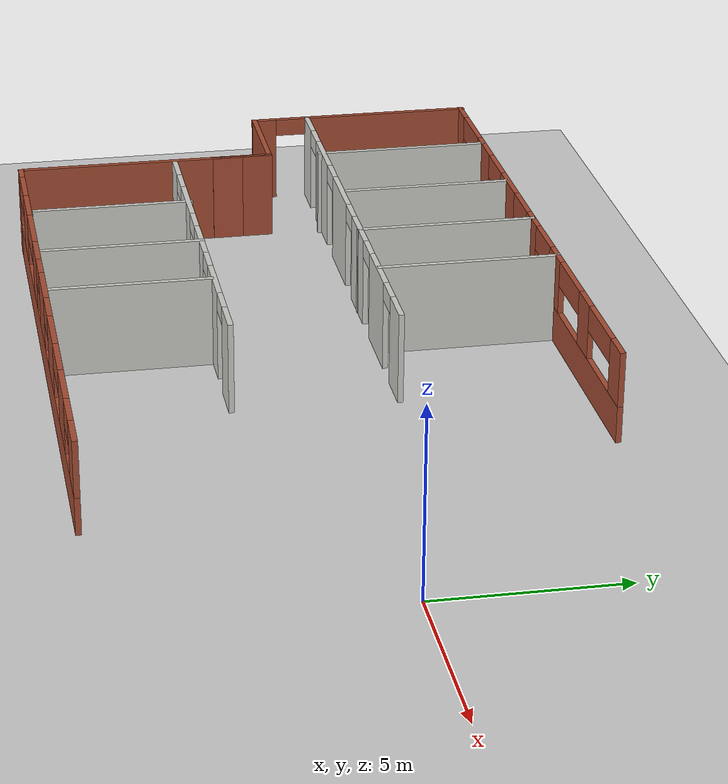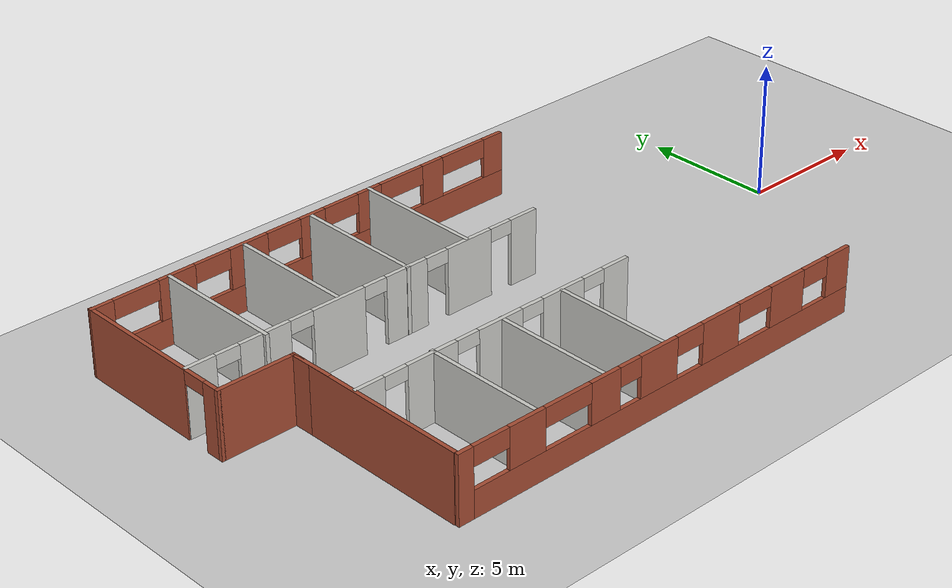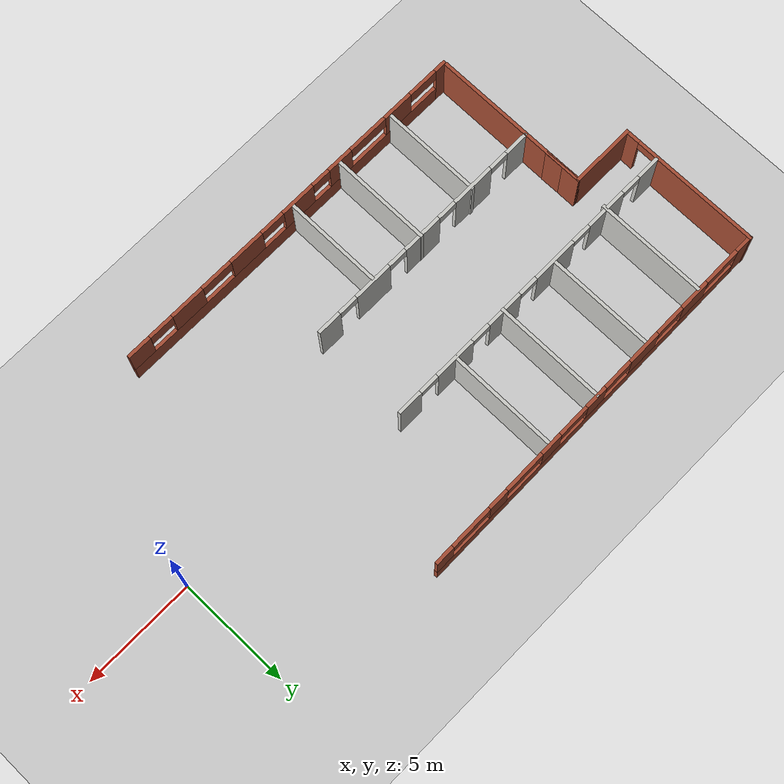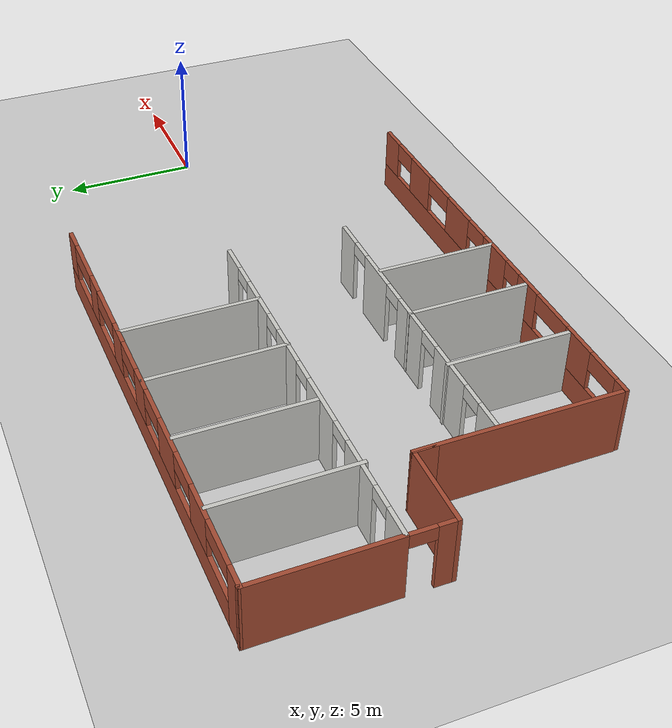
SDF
<sdf version="1.6">
 <world name="default">
  <model name="ground_plane">
   <static>1</static>
   <link name="link">
    <collision name="collision">
     <geometry><plane><normal>0 0 1</normal><size>100 100</size></plane></geometry>
     <surface><friction><ode><mu>100</mu><mu2>50</mu2></ode></friction></surface>
    </collision>
    <visual name="visual">
     <cast_shadows>0</cast_shadows>
     <geometry><plane><normal>0 0 1</normal><size>100 100</size></plane></geometry>
     <material>
      <script><uri>file://media/materials/scripts/gazebo.material</uri><name>Gazebo/Grey</name></script>
     </material>
    </visual>
   </link>
  </model>
  <model name="plantaHospital">
   <pose>-7.39918 0.567461 0 0 -0 0</pose>
   <link name="Wall_0">
    <pose>-5.58315 -7.9482 0 0 -0 0</pose>
    <visual name="Wall_0_Visual_0">
     <pose>-8.32751 0 1.25 0 -0 0</pose>
     <geometry><box><size>0.594984 0.15 2.5</size></box></geometry>
     <material>
      <script><uri>file://media/materials/scripts/gazebo.material</uri><name>Gazebo/Bricks</name></script>
      <ambient>1 1 1 1</ambient>
     </material>
    </visual>
    <collision name="Wall_0_Collision_0">
     <geometry><box><size>0.594984 0.15 2.5</size></box></geometry>
     <pose>-8.32751 0 1.25 0 -0 0</pose>
    </collision>
    <visual name="Wall_0_Visual_1">
     <pose>0.297492 0 0.5 0 -0 0</pose>
     <geometry><box><size>16.655 0.15 1</size></box></geometry>
     <material>
      <script><uri>file://media/materials/scripts/gazebo.material</uri><name>Gazebo/Bricks</name></script>
      <ambient>1 1 1 1</ambient>
     </material>
    </visual>
    <collision name="Wall_0_Collision_1">
     <geometry><box><size>16.655 0.15 1</size></box></geometry>
     <pose>0.297492 0 0.5 0 -0 0</pose>
    </collision>
    <visual name="Wall_0_Visual_2">
     <pose>-5.8979 0 1.75 0 -0 0</pose>
     <geometry><box><size>1.44064 0.15 1.5</size></box></geometry>
     <material>
      <script><uri>file://media/materials/scripts/gazebo.material</uri><name>Gazebo/Bricks</name></script>
      <ambient>1 1 1 1</ambient>
     </material>
    </visual>
    <collision name="Wall_0_Collision_2">
     <geometry><box><size>1.44064 0.15 1.5</size></box></geometry>
     <pose>-5.8979 0 1.75 0 -0 0</pose>
    </collision>
    <visual name="Wall_0_Visual_3">
     <pose>-2.67137 0 1.75 0 -0 0</pose>
     <geometry><box><size>1.22519 0.15 1.5</size></box></geometry>
     <material>
      <script><uri>file://media/materials/scripts/gazebo.material</uri><name>Gazebo/Bricks</name></script>
      <ambient>1 1 1 1</ambient>
     </material>
    </visual>
    <collision name="Wall_0_Collision_3">
     <geometry><box><size>1.22519 0.15 1.5</size></box></geometry>
     <pose>-2.67137 0 1.75 0 -0 0</pose>
    </collision>
    <visual name="Wall_0_Visual_4">
     <pose>-0.362931 0 1.75 0 -0 0</pose>
     <geometry><box><size>1.61261 0.15 1.5</size></box></geometry>
     <material>
      <script><uri>file://media/materials/scripts/gazebo.material</uri><name>Gazebo/Bricks</name></script>
      <ambient>1 1 1 1</ambient>
     </material>
    </visual>
    <collision name="Wall_0_Collision_4">
     <geometry><box><size>1.61261 0.15 1.5</size></box></geometry>
     <pose>-0.362931 0 1.75 0 -0 0</pose>
    </collision>
    <visual name="Wall_0_Visual_5">
     <pose>2.42997 0 1.75 0 -0 0</pose>
     <geometry><box><size>1.67518 0.15 1.5</size></box></geometry>
     <material>
      <script><uri>file://media/materials/scripts/gazebo.material</uri><name>Gazebo/Bricks</name></script>
      <ambient>1 1 1 1</ambient>
     </material>
    </visual>
    <collision name="Wall_0_Collision_5">
     <geometry><box><size>1.67518 0.15 1.5</size></box></geometry>
     <pose>2.42997 0 1.75 0 -0 0</pose>
    </collision>
    <visual name="Wall_0_Visual_6">
     <pose>5.5674 0 1.75 0 -0 0</pose>
     <geometry><box><size>1.59168 0.15 1.5</size></box></geometry>
     <material>
      <script><uri>file://media/materials/scripts/gazebo.material</uri><name>Gazebo/Bricks</name></script>
      <ambient>1 1 1 1</ambient>
     </material>
    </visual>
    <collision name="Wall_0_Collision_6">
     <geometry><box><size>1.59168 0.15 1.5</size></box></geometry>
     <pose>5.5674 0 1.75 0 -0 0</pose>
    </collision>
    <visual name="Wall_0_Visual_7">
     <pose>8.07412 0 1.75 0 -0 0</pose>
     <geometry><box><size>1.10176 0.15 1.5</size></box></geometry>
     <material>
      <script><uri>file://media/materials/scripts/gazebo.material</uri><name>Gazebo/Bricks</name></script>
      <ambient>1 1 1 1</ambient>
     </material>
    </visual>
    <collision name="Wall_0_Collision_7">
     <geometry><box><size>1.10176 0.15 1.5</size></box></geometry>
     <pose>8.07412 0 1.75 0 -0 0</pose>
    </collision>
    <visual name="Wall_0_Visual_8">
     <pose>-7.32411 0 2.15 0 -0 0</pose>
     <geometry><box><size>1.4118 0.15 0.7</size></box></geometry>
     <material>
      <script><uri>file://media/materials/scripts/gazebo.material</uri><name>Gazebo/Bricks</name></script>
      <ambient>1 1 1 1</ambient>
     </material>
    </visual>
    <collision name="Wall_0_Collision_8">
     <geometry><box><size>1.4118 0.15 0.7</size></box></geometry>
     <pose>-7.32411 0 2.15 0 -0 0</pose>
    </collision>
    <visual name="Wall_0_Visual_9">
     <pose>-4.23077 0 2.15 0 -0 0</pose>
     <geometry><box><size>1.8936 0.15 0.7</size></box></geometry>
     <material>
      <script><uri>file://media/materials/scripts/gazebo.material</uri><name>Gazebo/Bricks</name></script>
      <ambient>1 1 1 1</ambient>
     </material>
    </visual>
    <collision name="Wall_0_Collision_9">
     <geometry><box><size>1.8936 0.15 0.7</size></box></geometry>
     <pose>-4.23077 0 2.15 0 -0 0</pose>
    </collision>
    <visual name="Wall_0_Visual_10">
     <pose>-1.61401 0 2.15 0 -0 0</pose>
     <geometry><box><size>0.889543 0.15 0.7</size></box></geometry>
     <material>
      <script><uri>file://media/materials/scripts/gazebo.material</uri><name>Gazebo/Bricks</name></script>
      <ambient>1 1 1 1</ambient>
     </material>
    </visual>
    <collision name="Wall_0_Collision_10">
     <geometry><box><size>0.889543 0.15 0.7</size></box></geometry>
     <pose>-1.61401 0 2.15 0 -0 0</pose>
    </collision>
    <visual name="Wall_0_Visual_11">
     <pose>1.01787 0 2.15 0 -0 0</pose>
     <geometry><box><size>1.149 0.15 0.7</size></box></geometry>
     <material>
      <script><uri>file://media/materials/scripts/gazebo.material</uri><name>Gazebo/Bricks</name></script>
      <ambient>1 1 1 1</ambient>
     </material>
    </visual>
    <collision name="Wall_0_Collision_11">
     <geometry><box><size>1.149 0.15 0.7</size></box></geometry>
     <pose>1.01787 0 2.15 0 -0 0</pose>
    </collision>
    <visual name="Wall_0_Visual_12">
     <pose>4.01956 0 2.15 0 -0 0</pose>
     <geometry><box><size>1.504 0.15 0.7</size></box></geometry>
     <material>
      <script><uri>file://media/materials/scripts/gazebo.material</uri><name>Gazebo/Bricks</name></script>
      <ambient>1 1 1 1</ambient>
     </material>
    </visual>
    <collision name="Wall_0_Collision_12">
     <geometry><box><size>1.504 0.15 0.7</size></box></geometry>
     <pose>4.01956 0 2.15 0 -0 0</pose>
    </collision>
    <visual name="Wall_0_Visual_13">
     <pose>6.94324 0 2.15 0 -0 0</pose>
     <geometry><box><size>1.16 0.15 0.7</size></box></geometry>
     <material>
      <script><uri>file://media/materials/scripts/gazebo.material</uri><name>Gazebo/Bricks</name></script>
      <ambient>1 1 1 1</ambient>
     </material>
    </visual>
    <collision name="Wall_0_Collision_13">
     <geometry><box><size>1.16 0.15 0.7</size></box></geometry>
     <pose>6.94324 0 2.15 0 -0 0</pose>
    </collision>
   </link>
   <link name="Wall_28">
    <pose>-9.768 0.918744 0 0 -0 3.14159</pose>
    <visual name="Wall_28_Visual_0">
     <pose>-6.67188 0 1.25 0 -0 0</pose>
     <geometry><box><size>1.15625 0.15 2.5</size></box></geometry>
     <material>
      <script><uri>file://media/materials/scripts/gazebo.material</uri><name>Gazebo/CeilingTiled</name></script>
      <ambient>1 1 1 1</ambient>
     </material>
    </visual>
    <collision name="Wall_28_Collision_0">
     <geometry><box><size>1.15625 0.15 2.5</size></box></geometry>
     <pose>-6.67188 0 1.25 0 -0 0</pose>
    </collision>
    <visual name="Wall_28_Visual_1">
     <pose>-4.23031 0 1.25 0 -0 0</pose>
     <geometry><box><size>1.92688 0.15 2.5</size></box></geometry>
     <material>
      <script><uri>file://media/materials/scripts/gazebo.material</uri><name>Gazebo/CeilingTiled</name></script>
      <ambient>1 1 1 1</ambient>
     </material>
    </visual>
    <collision name="Wall_28_Collision_1">
     <geometry><box><size>1.92688 0.15 2.5</size></box></geometry>
     <pose>-4.23031 0 1.25 0 -0 0</pose>
    </collision>
    <visual name="Wall_28_Visual_2">
     <pose>-1.50521 0 1.25 0 -0 0</pose>
     <geometry><box><size>1.72333 0.15 2.5</size></box></geometry>
     <material>
      <script><uri>file://media/materials/scripts/gazebo.material</uri><name>Gazebo/CeilingTiled</name></script>
      <ambient>1 1 1 1</ambient>
     </material>
    </visual>
    <collision name="Wall_28_Collision_2">
     <geometry><box><size>1.72333 0.15 2.5</size></box></geometry>
     <pose>-1.50521 0 1.25 0 -0 0</pose>
    </collision>
    <visual name="Wall_28_Visual_3">
     <pose>1.30358 0 1.25 0 -0 0</pose>
     <geometry><box><size>2.09425 0.15 2.5</size></box></geometry>
     <material>
      <script><uri>file://media/materials/scripts/gazebo.material</uri><name>Gazebo/CeilingTiled</name></script>
      <ambient>1 1 1 1</ambient>
     </material>
    </visual>
    <collision name="Wall_28_Collision_3">
     <geometry><box><size>2.09425 0.15 2.5</size></box></geometry>
     <pose>1.30358 0 1.25 0 -0 0</pose>
    </collision>
    <visual name="Wall_28_Visual_4">
     <pose>4.23055 0 1.25 0 -0 0</pose>
     <geometry><box><size>1.95968 0.15 2.5</size></box></geometry>
     <material>
      <script><uri>file://media/materials/scripts/gazebo.material</uri><name>Gazebo/CeilingTiled</name></script>
      <ambient>1 1 1 1</ambient>
     </material>
    </visual>
    <collision name="Wall_28_Collision_4">
     <geometry><box><size>1.95968 0.15 2.5</size></box></geometry>
     <pose>4.23055 0 1.25 0 -0 0</pose>
    </collision>
    <visual name="Wall_28_Visual_5">
     <pose>6.6802 0 1.25 0 -0 0</pose>
     <geometry><box><size>1.13961 0.15 2.5</size></box></geometry>
     <material>
      <script><uri>file://media/materials/scripts/gazebo.material</uri><name>Gazebo/CeilingTiled</name></script>
      <ambient>1 1 1 1</ambient>
     </material>
    </visual>
    <collision name="Wall_28_Collision_5">
     <geometry><box><size>1.13961 0.15 2.5</size></box></geometry>
     <pose>6.6802 0 1.25 0 -0 0</pose>
    </collision>
    <visual name="Wall_28_Visual_6">
     <pose>-5.64375 0 2.25 0 -0 0</pose>
     <geometry><box><size>0.9 0.15 0.5</size></box></geometry>
     <material>
      <script><uri>file://media/materials/scripts/gazebo.material</uri><name>Gazebo/CeilingTiled</name></script>
      <ambient>1 1 1 1</ambient>
     </material>
    </visual>
    <collision name="Wall_28_Collision_6">
     <geometry><box><size>0.9 0.15 0.5</size></box></geometry>
     <pose>-5.64375 0 2.25 0 -0 0</pose>
    </collision>
    <visual name="Wall_28_Visual_7">
     <pose>-2.81687 0 2.25 0 -0 0</pose>
     <geometry><box><size>0.9 0.15 0.5</size></box></geometry>
     <material>
      <script><uri>file://media/materials/scripts/gazebo.material</uri><name>Gazebo/CeilingTiled</name></script>
      <ambient>1 1 1 1</ambient>
     </material>
    </visual>
    <collision name="Wall_28_Collision_7">
     <geometry><box><size>0.9 0.15 0.5</size></box></geometry>
     <pose>-2.81687 0 2.25 0 -0 0</pose>
    </collision>
    <visual name="Wall_28_Visual_8">
     <pose>-0.193541 0 2.25 0 -0 0</pose>
     <geometry><box><size>0.9 0.15 0.5</size></box></geometry>
     <material>
      <script><uri>file://media/materials/scripts/gazebo.material</uri><name>Gazebo/CeilingTiled</name></script>
      <ambient>1 1 1 1</ambient>
     </material>
    </visual>
    <collision name="Wall_28_Collision_8">
     <geometry><box><size>0.9 0.15 0.5</size></box></geometry>
     <pose>-0.193541 0 2.25 0 -0 0</pose>
    </collision>
    <visual name="Wall_28_Visual_9">
     <pose>2.80071 0 2.25 0 -0 0</pose>
     <geometry><box><size>0.9 0.15 0.5</size></box></geometry>
     <material>
      <script><uri>file://media/materials/scripts/gazebo.material</uri><name>Gazebo/CeilingTiled</name></script>
      <ambient>1 1 1 1</ambient>
     </material>
    </visual>
    <collision name="Wall_28_Collision_9">
     <geometry><box><size>0.9 0.15 0.5</size></box></geometry>
     <pose>2.80071 0 2.25 0 -0 0</pose>
    </collision>
    <visual name="Wall_28_Visual_10">
     <pose>5.66039 0 2.25 0 -0 0</pose>
     <geometry><box><size>0.9 0.15 0.5</size></box></geometry>
     <material>
      <script><uri>file://media/materials/scripts/gazebo.material</uri><name>Gazebo/CeilingTiled</name></script>
      <ambient>1 1 1 1</ambient>
     </material>
    </visual>
    <collision name="Wall_28_Collision_10">
     <geometry><box><size>0.9 0.15 0.5</size></box></geometry>
     <pose>5.66039 0 2.25 0 -0 0</pose>
    </collision>
   </link>
   <link name="Wall_50">
    <collision name="Wall_50_Collision">
     <geometry><box><size>4.5 0.15 2.5</size></box></geometry>
     <pose>0 0 1.25 0 -0 0</pose>
    </collision>
    <visual name="Wall_50_Visual">
     <pose>0 0 1.25 0 -0 0</pose>
     <geometry><box><size>4.5 0.15 2.5</size></box></geometry>
     <material>
      <script><uri>file://media/materials/scripts/gazebo.material</uri><name>Gazebo/CeilingTiled</name></script>
      <ambient>1 1 1 1</ambient>
     </material>
    </visual>
    <pose>-8.20464 -5.645 0 0 -0 1.5708</pose>
   </link>
   <link name="Wall_52">
    <collision name="Wall_52_Collision">
     <geometry><box><size>4.5 0.15 2.5</size></box></geometry>
     <pose>0 0 1.25 0 -0 0</pose>
    </collision>
    <visual name="Wall_52_Visual">
     <pose>0 0 1.25 0 -0 0</pose>
     <geometry><box><size>4.5 0.15 2.5</size></box></geometry>
     <material>
      <script><uri>file://media/materials/scripts/gazebo.material</uri><name>Gazebo/CeilingTiled</name></script>
      <ambient>1 1 1 1</ambient>
     </material>
    </visual>
    <pose>-5.64747 -5.75045 0 0 -0 1.5708</pose>
   </link>
   <link name="Wall_56">
    <collision name="Wall_56_Collision">
     <geometry><box><size>5 0.15 2.5</size></box></geometry>
     <pose>0 0 1.25 0 -0 0</pose>
    </collision>
    <visual name="Wall_56_Visual">
     <pose>0 0 1.25 0 -0 0</pose>
     <geometry><box><size>5 0.15 2.5</size></box></geometry>
     <material>
      <script><uri>file://media/materials/scripts/gazebo.material</uri><name>Gazebo/CeilingTiled</name></script>
      <ambient>1 1 1 1</ambient>
     </material>
    </visual>
    <pose>-14.022 3.23326 0 0 0 -1.5708</pose>
   </link>
   <link name="Wall_58">
    <collision name="Wall_58_Collision">
     <geometry><box><size>4.75 0.15 2.5</size></box></geometry>
     <pose>0 0 1.25 0 -0 0</pose>
    </collision>
    <visual name="Wall_58_Visual">
     <pose>0 0 1.25 0 -0 0</pose>
     <geometry><box><size>4.75 0.15 2.5</size></box></geometry>
     <material>
      <script><uri>file://media/materials/scripts/gazebo.material</uri><name>Gazebo/CeilingTiled</name></script>
      <ambient>1 1 1 1</ambient>
     </material>
    </visual>
    <pose>-11.0228 3.35372 0 0 0 -1.5708</pose>
   </link>
   <link name="Wall_6">
    <collision name="Wall_6_Collision">
     <geometry><box><size>1.75 0.15 2.5</size></box></geometry>
     <pose>0 0 1.25 0 -0 0</pose>
    </collision>
    <visual name="Wall_6_Visual">
     <pose>0 0 1.25 0 -0 0</pose>
     <geometry><box><size>1.75 0.15 2.5</size></box></geometry>
     <material>
      <script><uri>file://media/materials/scripts/gazebo.material</uri><name>Gazebo/Bricks</name></script>
      <ambient>1 1 1 1</ambient>
     </material>
    </visual>
    <pose>-14.1523 -1.48625 0 0 -0 1.58268</pose>
   </link>
   <link name="Wall_60">
    <collision name="Wall_60_Collision">
     <geometry><box><size>5 0.15 2.5</size></box></geometry>
     <pose>0 0 1.25 0 -0 0</pose>
    </collision>
    <visual name="Wall_60_Visual">
     <pose>0 0 1.25 0 -0 0</pose>
     <geometry><box><size>5 0.15 2.5</size></box></geometry>
     <material>
      <script><uri>file://media/materials/scripts/gazebo.material</uri><name>Gazebo/CeilingTiled</name></script>
      <ambient>1 1 1 1</ambient>
     </material>
    </visual>
    <pose>-8.20623 3.32991 0 0 0 -1.5708</pose>
   </link>
   <link name="Wall_62">
    <collision name="Wall_62_Collision">
     <geometry><box><size>5 0.15 2.5</size></box></geometry>
     <pose>0 0 1.25 0 -0 0</pose>
    </collision>
    <visual name="Wall_62_Visual">
     <pose>0 0 1.25 0 -0 0</pose>
     <geometry><box><size>5 0.15 2.5</size></box></geometry>
     <material>
      <script><uri>file://media/materials/scripts/gazebo.material</uri><name>Gazebo/CeilingTiled</name></script>
      <ambient>1 1 1 1</ambient>
     </material>
    </visual>
    <pose>-5.58377 3.38542 0 0 0 -1.5708</pose>
   </link>
   <link name="Wall_66">
    <collision name="Wall_66_Collision">
     <geometry><box><size>7.25 0.15 2.5</size></box></geometry>
     <pose>0 0 1.25 0 -0 0</pose>
    </collision>
    <visual name="Wall_66_Visual">
     <pose>0 0 1.25 0 -0 0</pose>
     <geometry><box><size>7.25 0.15 2.5</size></box></geometry>
     <material>
      <script><uri>file://media/materials/scripts/gazebo.material</uri><name>Gazebo/Bricks</name></script>
      <ambient>1 1 1 1</ambient>
     </material>
    </visual>
    <pose>-14.1523 -4.23625 0 0 0 -1.5708</pose>
   </link>
   <link name="Wall_69">
    <pose>-8.41154 -3.47904 0 0 -0 0</pose>
    <visual name="Wall_69_Visual_0">
     <pose>-5.17859 0 1.25 0 -0 0</pose>
     <geometry><box><size>1.14282 0.15 2.5</size></box></geometry>
     <material>
      <script><uri>file://media/materials/scripts/gazebo.material</uri><name>Gazebo/CeilingTiled</name></script>
      <ambient>1 1 1 1</ambient>
     </material>
    </visual>
    <collision name="Wall_69_Collision_0">
     <geometry><box><size>1.14282 0.15 2.5</size></box></geometry>
     <pose>-5.17859 0 1.25 0 -0 0</pose>
    </collision>
    <visual name="Wall_69_Visual_1">
     <pose>-2.70225 0 1.25 0 -0 0</pose>
     <geometry><box><size>2.00986 0.15 2.5</size></box></geometry>
     <material>
      <script><uri>file://media/materials/scripts/gazebo.material</uri><name>Gazebo/CeilingTiled</name></script>
      <ambient>1 1 1 1</ambient>
     </material>
    </visual>
    <collision name="Wall_69_Collision_1">
     <geometry><box><size>2.00986 0.15 2.5</size></box></geometry>
     <pose>-2.70225 0 1.25 0 -0 0</pose>
    </collision>
    <visual name="Wall_69_Visual_2">
     <pose>0.123504 0 1.25 0 -0 0</pose>
     <geometry><box><size>1.84164 0.15 2.5</size></box></geometry>
     <material>
      <script><uri>file://media/materials/scripts/gazebo.material</uri><name>Gazebo/CeilingTiled</name></script>
      <ambient>1 1 1 1</ambient>
     </material>
    </visual>
    <collision name="Wall_69_Collision_2">
     <geometry><box><size>1.84164 0.15 2.5</size></box></geometry>
     <pose>0.123504 0 1.25 0 -0 0</pose>
    </collision>
    <visual name="Wall_69_Visual_3">
     <pose>2.83999 0 1.25 0 -0 0</pose>
     <geometry><box><size>1.79134 0.15 2.5</size></box></geometry>
     <material>
      <script><uri>file://media/materials/scripts/gazebo.material</uri><name>Gazebo/CeilingTiled</name></script>
      <ambient>1 1 1 1</ambient>
     </material>
    </visual>
    <collision name="Wall_69_Collision_3">
     <geometry><box><size>1.79134 0.15 2.5</size></box></geometry>
     <pose>2.83999 0 1.25 0 -0 0</pose>
    </collision>
    <visual name="Wall_69_Visual_4">
     <pose>5.19283 0 1.25 0 -0 0</pose>
     <geometry><box><size>1.11434 0.15 2.5</size></box></geometry>
     <material>
      <script><uri>file://media/materials/scripts/gazebo.material</uri><name>Gazebo/CeilingTiled</name></script>
      <ambient>1 1 1 1</ambient>
     </material>
    </visual>
    <collision name="Wall_69_Collision_4">
     <geometry><box><size>1.11434 0.15 2.5</size></box></geometry>
     <pose>5.19283 0 1.25 0 -0 0</pose>
    </collision>
    <visual name="Wall_69_Visual_5">
     <pose>-4.15718 0 2.25 0 -0 0</pose>
     <geometry><box><size>0.9 0.15 0.5</size></box></geometry>
     <material>
      <script><uri>file://media/materials/scripts/gazebo.material</uri><name>Gazebo/CeilingTiled</name></script>
      <ambient>1 1 1 1</ambient>
     </material>
    </visual>
    <collision name="Wall_69_Collision_5">
     <geometry><box><size>0.9 0.15 0.5</size></box></geometry>
     <pose>-4.15718 0 2.25 0 -0 0</pose>
    </collision>
    <visual name="Wall_69_Visual_6">
     <pose>-1.24732 0 2.25 0 -0 0</pose>
     <geometry><box><size>0.9 0.15 0.5</size></box></geometry>
     <material>
      <script><uri>file://media/materials/scripts/gazebo.material</uri><name>Gazebo/CeilingTiled</name></script>
      <ambient>1 1 1 1</ambient>
     </material>
    </visual>
    <collision name="Wall_69_Collision_6">
     <geometry><box><size>0.9 0.15 0.5</size></box></geometry>
     <pose>-1.24732 0 2.25 0 -0 0</pose>
    </collision>
    <visual name="Wall_69_Visual_7">
     <pose>1.49433 0 2.25 0 -0 0</pose>
     <geometry><box><size>0.9 0.15 0.5</size></box></geometry>
     <material>
      <script><uri>file://media/materials/scripts/gazebo.material</uri><name>Gazebo/CeilingTiled</name></script>
      <ambient>1 1 1 1</ambient>
     </material>
    </visual>
    <collision name="Wall_69_Collision_7">
     <geometry><box><size>0.9 0.15 0.5</size></box></geometry>
     <pose>1.49433 0 2.25 0 -0 0</pose>
    </collision>
    <visual name="Wall_69_Visual_8">
     <pose>4.18566 0 2.25 0 -0 0</pose>
     <geometry><box><size>0.9 0.15 0.5</size></box></geometry>
     <material>
      <script><uri>file://media/materials/scripts/gazebo.material</uri><name>Gazebo/CeilingTiled</name></script>
      <ambient>1 1 1 1</ambient>
     </material>
    </visual>
    <collision name="Wall_69_Collision_8">
     <geometry><box><size>0.9 0.15 0.5</size></box></geometry>
     <pose>4.18566 0 2.25 0 -0 0</pose>
    </collision>
   </link>
   <link name="Wall_7">
    <collision name="Wall_7_Collision">
     <geometry><box><size>2.98098 0.15 2.5</size></box></geometry>
     <pose>0 0 1.25 0 -0 0</pose>
    </collision>
    <visual name="Wall_7_Visual">
     <pose>0 0 1.25 0 -0 0</pose>
     <geometry><box><size>2.98098 0.15 2.5</size></box></geometry>
     <material>
      <script><uri>file://media/materials/scripts/gazebo.material</uri><name>Gazebo/Bricks</name></script>
      <ambient>1 1 1 1</ambient>
     </material>
    </visual>
    <pose>-15.5773 -0.686247 0 0 -0 3.14159</pose>
   </link>
   <link name="Wall_73">
    <collision name="Wall_73_Collision">
     <geometry><box><size>4.5 0.15 2.5</size></box></geometry>
     <pose>0 0 1.25 0 -0 0</pose>
    </collision>
    <visual name="Wall_73_Visual">
     <pose>0 0 1.25 0 -0 0</pose>
     <geometry><box><size>4.5 0.15 2.5</size></box></geometry>
     <material>
      <script><uri>file://media/materials/scripts/gazebo.material</uri><name>Gazebo/CeilingTiled</name></script>
      <ambient>1 1 1 1</ambient>
     </material>
    </visual>
    <pose>-11.0211 -5.60341 0 0 0 -1.5708</pose>
   </link>
   <link name="Wall_8">
    <pose>-16.9928 2.51405 0 0 -0 1.5708</pose>
    <visual name="Wall_8_Visual_0">
     <pose>-2.91641 0 1.25 0 -0 0</pose>
     <geometry><box><size>0.71777 0.15 2.5</size></box></geometry>
     <material>
      <script><uri>file://media/materials/scripts/gazebo.material</uri><name>Gazebo/Bricks</name></script>
      <ambient>1 1 1 1</ambient>
     </material>
    </visual>
    <collision name="Wall_8_Collision_0">
     <geometry><box><size>0.71777 0.15 2.5</size></box></geometry>
     <pose>-2.91641 0 1.25 0 -0 0</pose>
    </collision>
    <visual name="Wall_8_Visual_1">
     <pose>0.808885 0 1.25 0 -0 0</pose>
     <geometry><box><size>4.93282 0.15 2.5</size></box></geometry>
     <material>
      <script><uri>file://media/materials/scripts/gazebo.material</uri><name>Gazebo/Bricks</name></script>
      <ambient>1 1 1 1</ambient>
     </material>
    </visual>
    <collision name="Wall_8_Collision_1">
     <geometry><box><size>4.93282 0.15 2.5</size></box></geometry>
     <pose>0.808885 0 1.25 0 -0 0</pose>
    </collision>
    <visual name="Wall_8_Visual_2">
     <pose>-2.10753 0 2.25 0 -0 0</pose>
     <geometry><box><size>0.9 0.15 0.5</size></box></geometry>
     <material>
      <script><uri>file://media/materials/scripts/gazebo.material</uri><name>Gazebo/Bricks</name></script>
      <ambient>1 1 1 1</ambient>
     </material>
    </visual>
    <collision name="Wall_8_Collision_2">
     <geometry><box><size>0.9 0.15 0.5</size></box></geometry>
     <pose>-2.10753 0 2.25 0 -0 0</pose>
    </collision>
   </link>
   <link name="Wall_9">
    <pose>-8.22465 5.78496 0 0 -0 0.010938</pose>
    <visual name="Wall_9_Visual_0">
     <pose>-8.41258 0 1.25 0 -0 0</pose>
     <geometry><box><size>0.862237 0.15 2.5</size></box></geometry>
     <material>
      <script><uri>file://media/materials/scripts/gazebo.material</uri><name>Gazebo/Bricks</name></script>
      <ambient>1 1 1 1</ambient>
     </material>
    </visual>
    <collision name="Wall_9_Collision_0">
     <geometry><box><size>0.862237 0.15 2.5</size></box></geometry>
     <pose>-8.41258 0 1.25 0 -0 0</pose>
    </collision>
    <visual name="Wall_9_Visual_1">
     <pose>0.431119 0 0.5 0 -0 0</pose>
     <geometry><box><size>16.8252 0.15 1</size></box></geometry>
     <material>
      <script><uri>file://media/materials/scripts/gazebo.material</uri><name>Gazebo/Bricks</name></script>
      <ambient>1 1 1 1</ambient>
     </material>
    </visual>
    <collision name="Wall_9_Collision_1">
     <geometry><box><size>16.8252 0.15 1</size></box></geometry>
     <pose>0.431119 0 0.5 0 -0 0</pose>
    </collision>
    <visual name="Wall_9_Visual_2">
     <pose>-5.51372 0 1.75 0 -0 0</pose>
     <geometry><box><size>1.4337 0.15 1.5</size></box></geometry>
     <material>
      <script><uri>file://media/materials/scripts/gazebo.material</uri><name>Gazebo/Bricks</name></script>
      <ambient>1 1 1 1</ambient>
     </material>
    </visual>
    <collision name="Wall_9_Collision_2">
     <geometry><box><size>1.4337 0.15 1.5</size></box></geometry>
     <pose>-5.51372 0 1.75 0 -0 0</pose>
    </collision>
    <visual name="Wall_9_Visual_3">
     <pose>-2.61181 0 1.75 0 -0 0</pose>
     <geometry><box><size>1.5647 0.15 1.5</size></box></geometry>
     <material>
      <script><uri>file://media/materials/scripts/gazebo.material</uri><name>Gazebo/Bricks</name></script>
      <ambient>1 1 1 1</ambient>
     </material>
    </visual>
    <collision name="Wall_9_Collision_3">
     <geometry><box><size>1.5647 0.15 1.5</size></box></geometry>
     <pose>-2.61181 0 1.75 0 -0 0</pose>
    </collision>
    <visual name="Wall_9_Visual_4">
     <pose>0.099094 0 1.75 0 -0 0</pose>
     <geometry><box><size>1.05167 0.15 1.5</size></box></geometry>
     <material>
      <script><uri>file://media/materials/scripts/gazebo.material</uri><name>Gazebo/Bricks</name></script>
      <ambient>1 1 1 1</ambient>
     </material>
    </visual>
    <collision name="Wall_9_Collision_4">
     <geometry><box><size>1.05167 0.15 1.5</size></box></geometry>
     <pose>0.099094 0 1.75 0 -0 0</pose>
    </collision>
    <visual name="Wall_9_Visual_5">
     <pose>2.60565 0 1.75 0 -0 0</pose>
     <geometry><box><size>1.03421 0.15 1.5</size></box></geometry>
     <material>
      <script><uri>file://media/materials/scripts/gazebo.material</uri><name>Gazebo/Bricks</name></script>
      <ambient>1 1 1 1</ambient>
     </material>
    </visual>
    <collision name="Wall_9_Collision_5">
     <geometry><box><size>1.03421 0.15 1.5</size></box></geometry>
     <pose>2.60565 0 1.75 0 -0 0</pose>
    </collision>
    <visual name="Wall_9_Visual_6">
     <pose>5.5123 0 1.75 0 -0 0</pose>
     <geometry><box><size>0.953097 0.15 1.5</size></box></geometry>
     <material>
      <script><uri>file://media/materials/scripts/gazebo.material</uri><name>Gazebo/Bricks</name></script>
      <ambient>1 1 1 1</ambient>
     </material>
    </visual>
    <collision name="Wall_9_Collision_6">
     <geometry><box><size>0.953097 0.15 1.5</size></box></geometry>
     <pose>5.5123 0 1.75 0 -0 0</pose>
    </collision>
    <visual name="Wall_9_Visual_7">
     <pose>8.401 0 1.75 0 -0 0</pose>
     <geometry><box><size>0.885394 0.15 1.5</size></box></geometry>
     <material>
      <script><uri>file://media/materials/scripts/gazebo.material</uri><name>Gazebo/Bricks</name></script>
      <ambient>1 1 1 1</ambient>
     </material>
    </visual>
    <collision name="Wall_9_Collision_7">
     <geometry><box><size>0.885394 0.15 1.5</size></box></geometry>
     <pose>8.401 0 1.75 0 -0 0</pose>
    </collision>
    <visual name="Wall_9_Visual_8">
     <pose>-7.10602 0 2.15 0 -0 0</pose>
     <geometry><box><size>1.75089 0.15 0.7</size></box></geometry>
     <material>
      <script><uri>file://media/materials/scripts/gazebo.material</uri><name>Gazebo/Bricks</name></script>
      <ambient>1 1 1 1</ambient>
     </material>
    </visual>
    <collision name="Wall_9_Collision_8">
     <geometry><box><size>1.75089 0.15 0.7</size></box></geometry>
     <pose>-7.10602 0 2.15 0 -0 0</pose>
    </collision>
    <visual name="Wall_9_Visual_9">
     <pose>-4.09551 0 2.15 0 -0 0</pose>
     <geometry><box><size>1.40271 0.15 0.7</size></box></geometry>
     <material>
      <script><uri>file://media/materials/scripts/gazebo.material</uri><name>Gazebo/Bricks</name></script>
      <ambient>1 1 1 1</ambient>
     </material>
    </visual>
    <collision name="Wall_9_Collision_9">
     <geometry><box><size>1.40271 0.15 0.7</size></box></geometry>
     <pose>-4.09551 0 2.15 0 -0 0</pose>
    </collision>
    <visual name="Wall_9_Visual_10">
     <pose>-1.1281 0 2.15 0 -0 0</pose>
     <geometry><box><size>1.40272 0.15 0.7</size></box></geometry>
     <material>
      <script><uri>file://media/materials/scripts/gazebo.material</uri><name>Gazebo/Bricks</name></script>
      <ambient>1 1 1 1</ambient>
     </material>
    </visual>
    <collision name="Wall_9_Collision_10">
     <geometry><box><size>1.40272 0.15 0.7</size></box></geometry>
     <pose>-1.1281 0 2.15 0 -0 0</pose>
    </collision>
    <visual name="Wall_9_Visual_11">
     <pose>1.35674 0 2.15 0 -0 0</pose>
     <geometry><box><size>1.46362 0.15 0.7</size></box></geometry>
     <material>
      <script><uri>file://media/materials/scripts/gazebo.material</uri><name>Gazebo/Bricks</name></script>
      <ambient>1 1 1 1</ambient>
     </material>
    </visual>
    <collision name="Wall_9_Collision_11">
     <geometry><box><size>1.46362 0.15 0.7</size></box></geometry>
     <pose>1.35674 0 2.15 0 -0 0</pose>
    </collision>
    <visual name="Wall_9_Visual_12">
     <pose>4.07926 0 2.15 0 -0 0</pose>
     <geometry><box><size>1.913 0.15 0.7</size></box></geometry>
     <material>
      <script><uri>file://media/materials/scripts/gazebo.material</uri><name>Gazebo/Bricks</name></script>
      <ambient>1 1 1 1</ambient>
     </material>
    </visual>
    <collision name="Wall_9_Collision_12">
     <geometry><box><size>1.913 0.15 0.7</size></box></geometry>
     <pose>4.07926 0 2.15 0 -0 0</pose>
    </collision>
    <visual name="Wall_9_Visual_13">
     <pose>6.97358 0 2.15 0 -0 0</pose>
     <geometry><box><size>1.96945 0.15 0.7</size></box></geometry>
     <material>
      <script><uri>file://media/materials/scripts/gazebo.material</uri><name>Gazebo/Bricks</name></script>
      <ambient>1 1 1 1</ambient>
     </material>
    </visual>
    <collision name="Wall_9_Collision_13">
     <geometry><box><size>1.96945 0.15 0.7</size></box></geometry>
     <pose>6.97358 0 2.15 0 -0 0</pose>
    </collision>
   </link>
   <static>1</static>
  </model>
 </world>
</sdf>
